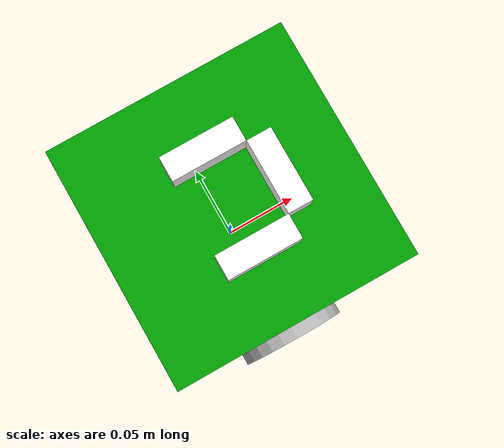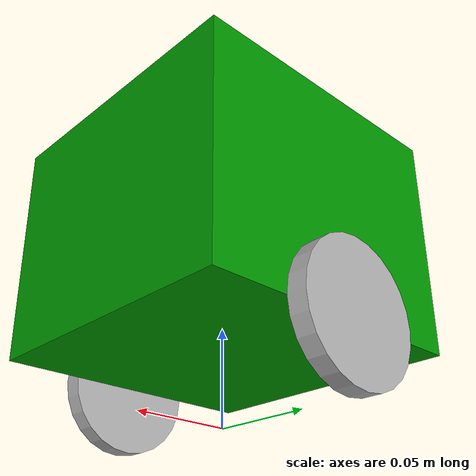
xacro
<?xml version="1.0"?>
<robot name="my_robot" xmlns:xacro="http://www.ros.org/wiki/xacro">

    <!-- Materials -->
    <material name="grey">
        <color rgba="0.7 0.7 0.7 1" />
    </material>

    <material name="green">
        <color rgba="0 0.6 0 1" />
    </material>

    <material name="white">
        <color rgba="1 1 1 1" />
    </material>

    <!-- Base Footprint -->
    <link name="base_footprint" />

    <!-- Base Link -->
    <link name="base_link">
        <visual>
            <geometry>
                <box size="0.15 0.15 0.12" />
            </geometry>
            <origin xyz="0 0 0.06 " rpy="0 0 0" />
            <material name="green" />
        </visual>
    </link>

    <!-- Ultrasonic Sensors -->
    <link name="left_ultrasonic">
        <visual>
            <geometry>
                <box size="0.015 0.045 0.02" />
            </geometry>
            <origin xyz="0 0 0 " rpy="0 0 1.57" />
            <material name="white" />
        </visual>
    </link>

    <link name="center_ultrasonic">
        <visual>
            <geometry>
                <box size="0.015 0.045 0.02" />
            </geometry>
            <origin xyz="0 0 0 " rpy="0 0 0" />
            <material name="white" />
        </visual>
    </link>

    <link name="right_ultrasonic">
        <visual>
            <geometry>
                <box size="0.015 0.045 0.02" />
            </geometry>
            <origin xyz="0 0 0 " rpy="0 0 1.57" />
            <material name="white" />
        </visual>
    </link>

    <!-- Wheel Macro -->
    <xacro:macro name="wheel_link" params="prefix">
        <link name="${prefix}_wheel">
            <visual>
                <geometry>
                    <cylinder radius="0.035" length="0.01" />
                </geometry>
                <origin xyz="0 0 0 " rpy="1.57 0 0" />
                <material name="grey" />
            </visual>
        </link>
    </xacro:macro>

    <!-- Wheels -->
    <xacro:wheel_link prefix="left" />
    <xacro:wheel_link prefix="right" />

    <!-- Joints -->
    <joint name="base_joint" type="fixed">
        <parent link="base_footprint" />
        <child link="base_link" />
        <origin xyz="0 0 0.035 " rpy="0 0 0" />
    </joint>

    <joint name="base_left_ultrasonic_joint" type="fixed">
        <parent link="base_link" />
        <child link="left_ultrasonic" />
        <origin xyz="0 0.03 0.13 " rpy="0 0 0" />
    </joint>

    <joint name="base_center_ultrasonic_joint" type="fixed">
        <parent link="base_link" />
        <child link="center_ultrasonic" />
        <origin xyz="0.03 0 0.13 " rpy="0 0 0" />
    </joint>

    <joint name="base_right_ultrasonic_joint" type="fixed">
        <parent link="base_link" />
        <child link="right_ultrasonic" />
        <origin xyz="0 -0.03 0.13 " rpy="0 0 0" />
    </joint>

    <joint name="base_left_wheel_joint" type="fixed">
        <parent link="base_link" />
        <child link="left_wheel" />
        <origin xyz="0 0.08 0 " rpy="0 0 0" />
        <axis xyz="0 1 0" />
    </joint>

    <joint name="base_right_wheel_joint" type="fixed">
        <parent link="base_link" />
        <child link="right_wheel" />
        <origin xyz="0 -0.08 0 " rpy="0 0 0" />
        <axis xyz="0 1 0" />
    </joint>
</robot>
